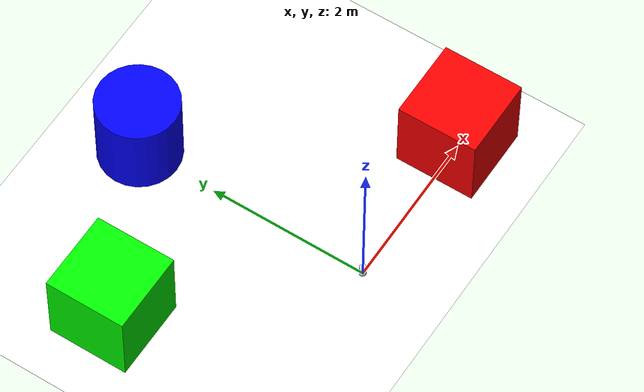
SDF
<?xml version="1.0" ?>
<sdf version="1.7">
    <world name="default">
        <!-- Gazebo Sim systems (needed for sensors to publish) -->
        <plugin filename="gz-sim-physics-system" name="gz::sim::systems::Physics"/>
        <plugin filename="gz-sim-user-commands-system" name="gz::sim::systems::UserCommands"/>
        <plugin filename="gz-sim-scene-broadcaster-system" name="gz::sim::systems::SceneBroadcaster"/>
        <plugin filename="gz-sim-sensors-system" name="gz::sim::systems::Sensors">
            <render_engine>ogre2</render_engine>
        </plugin>

        <light name="sun" type="directional">
            <cast_shadows>true</cast_shadows>
            <pose>0 0 10 0 0 0</pose>
            <diffuse>1 1 1 1</diffuse>
            <specular>0.1 0.1 0.1 1</specular>
            <direction>-0.5 0.1 -1</direction>
        </light>

        <model name="ground_plane">
            <static>true</static>
            <link name="link">
                <collision name="collision">
                    <geometry>
                        <plane>
                            <normal>0 0 1</normal>
                            <size>100 100</size>
                        </plane>
                    </geometry>
                </collision>
                <visual name="visual">
                    <geometry>
                        <plane>
                            <normal>0 0 1</normal>
                            <size>100 100</size>
                        </plane>
                    </geometry>
                    <material>
                        <ambient>1 1 1 1</ambient>
                        <diffuse>1 1 1 1</diffuse>
                        <specular>0.1 0.1 0.1 1</specular>
                    </material>
                </visual>
            </link>
        </model>

        <!-- Add some obstacles for the lidar to detect -->
        <model name="box1">
            <pose>2 0 0.5 0 0 0</pose>
            <static>true</static>
            <link name="link">
                <collision name="collision">
                    <geometry>
                        <box>
                            <size>1 1 1</size>
                        </box>
                    </geometry>
                </collision>
                <visual name="visual">
                    <geometry>
                        <box>
                            <size>1 1 1</size>
                        </box>
                    </geometry>
                    <material>
                        <ambient>1 0 0 1</ambient>
                        <diffuse>1 0 0 1</diffuse>
                    </material>
                </visual>
            </link>
        </model>

        <model name="box2">
            <pose>-2 2 0.5 0 0 0</pose>
            <static>true</static>
            <link name="link">
                <collision name="collision">
                    <geometry>
                        <box>
                            <size>1 1 1</size>
                        </box>
                    </geometry>
                </collision>
                <visual name="visual">
                    <geometry>
                        <box>
                            <size>1 1 1</size>
                        </box>
                    </geometry>
                    <material>
                        <ambient>0 1 0 1</ambient>
                        <diffuse>0 1 0 1</diffuse>
                    </material>
                </visual>
            </link>
        </model>

        <model name="cylinder1">
            <pose>0 3 0.5 0 0 0</pose>
            <static>true</static>
            <link name="link">
                <collision name="collision">
                    <geometry>
                        <cylinder>
                            <radius>0.5</radius>
                            <length>1</length>
                        </cylinder>
                    </geometry>
                </collision>
                <visual name="visual">
                    <geometry>
                        <cylinder>
                            <radius>0.5</radius>
                            <length>1</length>
                        </cylinder>
                    </geometry>
                    <material>
                        <ambient>0 0 1 1</ambient>
                        <diffuse>0 0 1 1</diffuse>
                    </material>
                </visual>
            </link>
        </model>

        <model name="velodyne_hdl-32">
            <link name="base">
                <pose>0 0 0.029335 0 0 0</pose>
                <inertial>
                    <mass>1.2</mass>
                    <inertia>
                        <ixx>0.001087473</ixx>
                        <iyy>0.001087473</iyy>
                        <izz>0.001092437</izz>
                        <ixy>0</ixy>
                        <ixz>0</ixz>
                        <iyz>0</iyz>
                    </inertia>
                </inertial>
                <collision name="base_collision">
                    <geometry>
                        <cylinder>
                            <radius>0.04267</radius>
                            <length>0.05867</length>
                        </cylinder>
                    </geometry>
                </collision>
                <visual name="base_visual">
                    <geometry>
                        <cylinder>
                            <radius>0.04267</radius>
                            <length>0.05867</length>
                        </cylinder>
                    </geometry>
                </visual>
            </link>

            <link name="top">
                <pose>0 0 0.095455 0 0 0</pose>
                <inertial>
                    <mass>0.1</mass>
                    <inertia>
                        <ixx>0.000090623</ixx>
                        <iyy>0.000090623</iyy>
                        <izz>0.000091036</izz>
                        <ixy>0</ixy>
                        <ixz>0</ixz>
                        <iyz>0</iyz>
                    </inertia>
                </inertial>
                <collision name="top_collision">
                    <geometry>
                        <cylinder>
                            <radius>0.04267</radius>
                            <length>0.07357</length>
                        </cylinder>
                    </geometry>
                </collision>
                <visual name="top_visual">
                    <geometry>
                        <cylinder>
                            <radius>0.04267</radius>
                            <length>0.07357</length>
                        </cylinder>
                    </geometry>
                </visual>
                <!-- GPU LiDAR sensor - more modern, outputs point cloud -->
                <sensor type="gpu_lidar" name="gpu_lidar_sensor">
                    <pose>0 0 -0.004645 1.5707 0 0</pose>

                    <!-- Enable visualization (won't show rays but may show points) -->
                    <visualize>true</visualize>

                    <!-- Set the update rate of the sensor -->
                    <update_rate>30</update_rate>

                    <topic>lidar_pointcloud</topic>

                    <lidar>
                        <!-- The scan element contains the horizontal and vertical beams. -->
                        <scan>
                            <!-- The horizontal beams -->
                            <horizontal>
                                <!-- The velodyne has 32 beams(samples) -->
                                <samples>32</samples>

                                <!-- Resolution is multiplied by samples to determine number of
                                simulated beams vs interpolated beams. -->
                                <resolution>1</resolution>

                                <!-- Minimum angle in radians -->
                                <min_angle>-0.53529248</min_angle>

                                <!-- Maximum angle in radians -->
                                <max_angle>0.18622663</max_angle>
                            </horizontal>

                            <!-- For a 3D lidar, we can add vertical scanning -->
                            <vertical>
                                <samples>1</samples>
                                <resolution>1</resolution>
                                <min_angle>0</min_angle>
                                <max_angle>0</max_angle>
                            </vertical>
                        </scan>

                        <!-- Range defines characteristics of an individual beam -->
                        <range>
                            <!-- Minimum distance of the beam -->
                            <min>0.05</min>

                            <!-- Maximum distance of the beam -->
                            <max>70</max>

                            <!-- Linear resolution of the beam -->
                            <resolution>0.02</resolution>
                        </range>

                        <noise>
                            <type>gaussian</type>
                            <mean>0.0</mean>
                            <stddev>0.01</stddev>
                        </noise>
                    </lidar>
                </sensor>
            </link>

            <joint type="revolute" name="joint">
                <pose>0 0 -0.036785 0 0 0</pose>
                <parent>base</parent>
                <child>top</child>
                <axis>
                    <xyz>0 0 1</xyz>
                    <limit>
                        <lower>-10000000000000000</lower>
                        <upper>10000000000000000</upper>
                    </limit>
                </axis>
            </joint>
        </model>
    </world>
</sdf>
